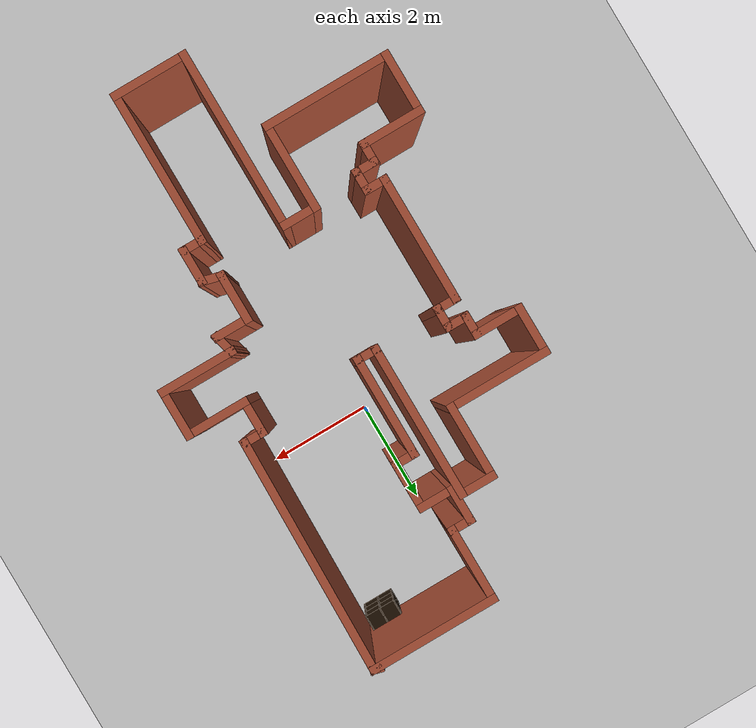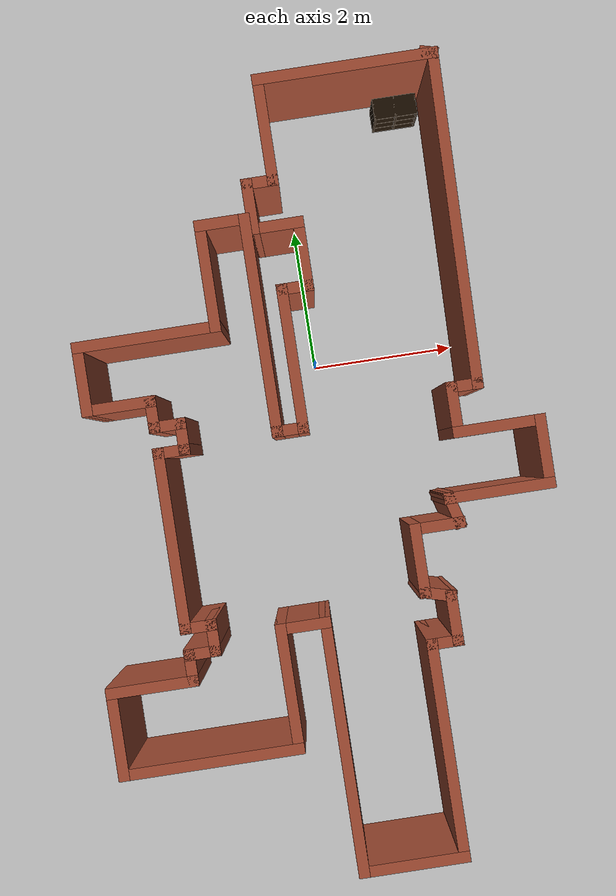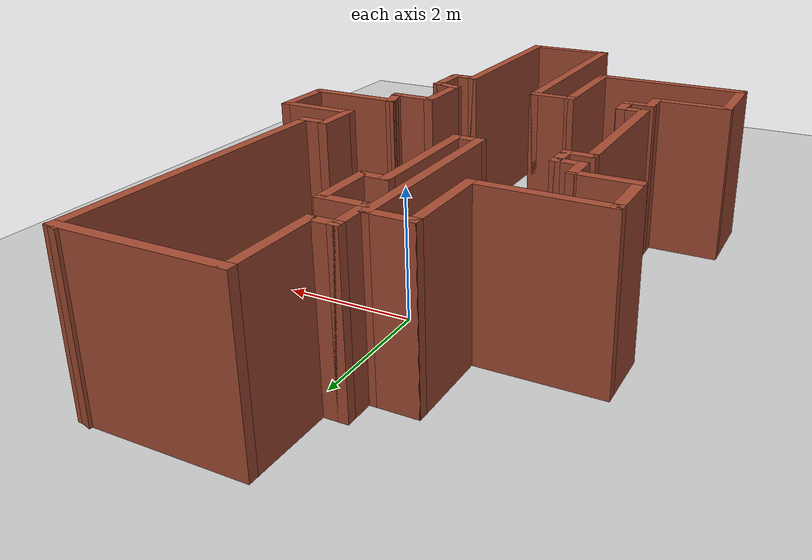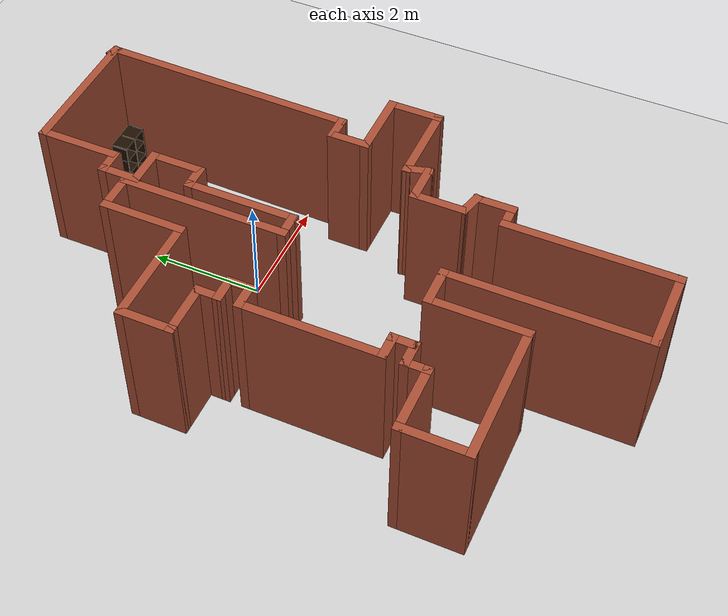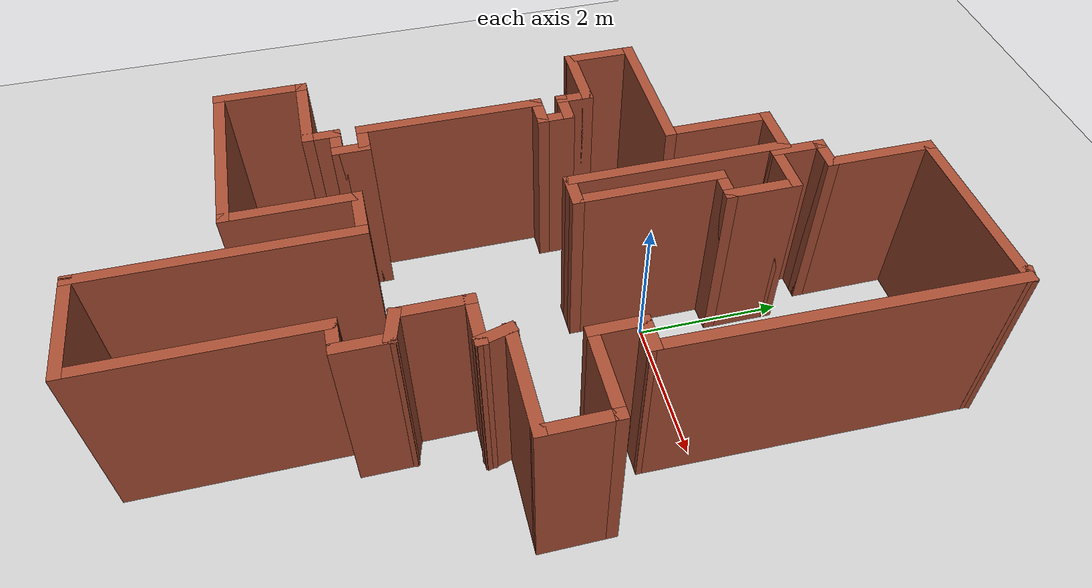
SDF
<sdf version="1.6">
 <world name="default">
  <light name="sun" type="directional">
   <pose>0 0 10 0 -0 0</pose>
   <diffuse>0.8 0.8 0.8 1</diffuse>
   <specular>0.2 0.2 0.2 1</specular>
   <attenuation>
    <range>1000</range>
    <constant>0.9</constant>
    <linear>0.01</linear>
    <quadratic>0.001</quadratic>
   </attenuation>
   <direction>-0.5 0.1 -0.9</direction>
  </light>
  <model name="ground_plane">
   <static>1</static>
   <link name="link">
    <collision name="collision">
     <geometry><plane><normal>0 0 1</normal><size>100 100</size></plane></geometry>
     <surface>
      <contact><collide_bitmask>65535</collide_bitmask></contact>
      <friction><ode><mu>100</mu><mu2>50</mu2></ode></friction>
     </surface>
    </collision>
    <visual name="visual">
     <cast_shadows>0</cast_shadows>
     <geometry><plane><normal>0 0 1</normal><size>100 100</size></plane></geometry>
     <material>
      <script><uri>file://media/materials/scripts/gazebo.material</uri><name>Gazebo/Grey</name></script>
     </material>
    </visual>
   </link>
  </model>
  <gravity>0 0 -9.8</gravity>
  <magnetic_field>6e-06 2.3e-05 -4.2e-05</magnetic_field>
  <atmosphere type="adiabatic"/>
  <physics name="default_physics" default="0" type="ode">
   <max_step_size>0.001</max_step_size>
   <real_time_factor>1</real_time_factor>
   <real_time_update_rate>1000</real_time_update_rate>
  </physics>
  <scene><ambient>0.4 0.4 0.4 1</ambient><background>0.7 0.7 0.7 1</background><shadows>1</shadows></scene>
  <audio><device>default</device></audio>
  <spherical_coordinates>
   <surface_model>EARTH_WGS84</surface_model>
   <latitude_deg>0</latitude_deg>
   <longitude_deg>0</longitude_deg>
   <elevation>0</elevation>
   <heading_deg>0</heading_deg>
  </spherical_coordinates>
  <model name="map_56">
   <pose>-0.262615 -1.51714 0 0 -0 0</pose>
   <link name="Wall_10">
    <collision name="Wall_10_Collision">
     <geometry><box><size>2 0.15 2.5</size></box></geometry>
     <pose>0 0 1.25 0 -0 0</pose>
    </collision>
    <visual name="Wall_10_Visual">
     <pose>0 0 1.25 0 -0 0</pose>
     <geometry><box><size>2 0.15 2.5</size></box></geometry>
     <material>
      <script><uri>file://media/materials/scripts/gazebo.material</uri><name>Gazebo/Bricks</name></script>
      <ambient>1 1 1 1</ambient>
     </material>
     <meta><layer>0</layer></meta>
    </visual>
    <pose>-0.03567 1.55363 0 0 -0 -1.5708</pose>
   </link>
   <link name="Wall_11">
    <collision name="Wall_11_Collision">
     <geometry><box><size>0.5 0.15 2.5</size></box></geometry>
     <pose>0 0 1.25 0 -0 0</pose>
    </collision>
    <visual name="Wall_11_Visual">
     <pose>0 0 1.25 0 -0 0</pose>
     <geometry><box><size>0.5 0.15 2.5</size></box></geometry>
     <material>
      <script><uri>file://media/materials/scripts/gazebo.material</uri><name>Gazebo/Bricks</name></script>
      <ambient>1 1 1 1</ambient>
     </material>
     <meta><layer>0</layer></meta>
    </visual>
    <pose>-0.21067 0.628631 0 0 -0 3.14159</pose>
   </link>
   <link name="Wall_14">
    <collision name="Wall_14_Collision">
     <geometry><box><size>3 0.15 2.5</size></box></geometry>
     <pose>0 0 1.25 0 -0 0</pose>
    </collision>
    <visual name="Wall_14_Visual">
     <pose>0 0 1.25 0 -0 0</pose>
     <geometry><box><size>3 0.15 2.5</size></box></geometry>
     <material>
      <script><uri>file://media/materials/scripts/gazebo.material</uri><name>Gazebo/Bricks</name></script>
      <ambient>1 1 1 1</ambient>
     </material>
     <meta><layer>0</layer></meta>
    </visual>
    <pose>-0.38567 2.05363 0 0 -0 1.5708</pose>
   </link>
   <link name="Wall_15">
    <collision name="Wall_15_Collision">
     <geometry><box><size>0.75 0.15 2.5</size></box></geometry>
     <pose>0 0 1.25 0 -0 0</pose>
    </collision>
    <visual name="Wall_15_Visual">
     <pose>0 0 1.25 0 -0 0</pose>
     <geometry><box><size>0.75 0.15 2.5</size></box></geometry>
     <material>
      <script><uri>file://media/materials/scripts/gazebo.material</uri><name>Gazebo/Bricks</name></script>
      <ambient>1 1 1 1</ambient>
     </material>
     <meta><layer>0</layer></meta>
    </visual>
    <pose>-0.68567 3.47863 0 0 -0 3.14159</pose>
   </link>
   <link name="Wall_16">
    <collision name="Wall_16_Collision">
     <geometry><box><size>1.5 0.15 2.5</size></box></geometry>
     <pose>0 0 1.25 0 -0 0</pose>
    </collision>
    <visual name="Wall_16_Visual">
     <pose>0 0 1.25 0 -0 0</pose>
     <geometry><box><size>1.5 0.15 2.5</size></box></geometry>
     <material>
      <script><uri>file://media/materials/scripts/gazebo.material</uri><name>Gazebo/Bricks</name></script>
      <ambient>1 1 1 1</ambient>
     </material>
     <meta><layer>0</layer></meta>
    </visual>
    <pose>-0.98567 2.80363 0 0 -0 -1.5708</pose>
   </link>
   <link name="Wall_17">
    <collision name="Wall_17_Collision">
     <geometry><box><size>2 0.15 2.5</size></box></geometry>
     <pose>0 0 1.25 0 -0 0</pose>
    </collision>
    <visual name="Wall_17_Visual">
     <pose>0 0 1.25 0 -0 0</pose>
     <geometry><box><size>2 0.15 2.5</size></box></geometry>
     <material>
      <script><uri>file://media/materials/scripts/gazebo.material</uri><name>Gazebo/Bricks</name></script>
      <ambient>1 1 1 1</ambient>
     </material>
     <meta><layer>0</layer></meta>
    </visual>
    <pose>-1.91067 2.12863 0 0 -0 3.14159</pose>
   </link>
   <link name="Wall_18">
    <collision name="Wall_18_Collision">
     <geometry><box><size>1 0.15 2.5</size></box></geometry>
     <pose>0 0 1.25 0 -0 0</pose>
    </collision>
    <visual name="Wall_18_Visual">
     <pose>0 0 1.25 0 -0 0</pose>
     <geometry><box><size>1 0.15 2.5</size></box></geometry>
     <material>
      <script><uri>file://media/materials/scripts/gazebo.material</uri><name>Gazebo/Bricks</name></script>
      <ambient>1 1 1 1</ambient>
     </material>
     <meta><layer>0</layer></meta>
    </visual>
    <pose>-2.83567 1.70363 0 0 -0 -1.5708</pose>
   </link>
   <link name="Wall_22">
    <collision name="Wall_22_Collision">
     <geometry><box><size>1 0.15 2.5</size></box></geometry>
     <pose>0 0 1.25 0 -0 0</pose>
    </collision>
    <visual name="Wall_22_Visual">
     <pose>0 0 1.25 0 -0 0</pose>
     <geometry><box><size>1 0.15 2.5</size></box></geometry>
     <material>
      <script><uri>file://media/materials/scripts/gazebo.material</uri><name>Gazebo/Bricks</name></script>
      <ambient>1 1 1 1</ambient>
     </material>
     <meta><layer>0</layer></meta>
    </visual>
    <pose>-2.41067 1.27863 0 0 -0 0</pose>
   </link>
   <link name="Wall_23">
    <collision name="Wall_23_Collision">
     <geometry><box><size>0.5 0.15 2.5</size></box></geometry>
     <pose>0 0 1.25 0 -0 0</pose>
    </collision>
    <visual name="Wall_23_Visual">
     <pose>0 0 1.25 0 -0 0</pose>
     <geometry><box><size>0.5 0.15 2.5</size></box></geometry>
     <material>
      <script><uri>file://media/materials/scripts/gazebo.material</uri><name>Gazebo/Bricks</name></script>
      <ambient>1 1 1 1</ambient>
     </material>
     <meta><layer>0</layer></meta>
    </visual>
    <pose>-1.98567 1.10363 0 0 -0 -1.5708</pose>
   </link>
   <link name="Wall_24">
    <collision name="Wall_24_Collision">
     <geometry><box><size>0.5 0.15 2.5</size></box></geometry>
     <pose>0 0 1.25 0 -0 0</pose>
    </collision>
    <visual name="Wall_24_Visual">
     <pose>0 0 1.25 0 -0 0</pose>
     <geometry><box><size>0.5 0.15 2.5</size></box></geometry>
     <material>
      <script><uri>file://media/materials/scripts/gazebo.material</uri><name>Gazebo/Bricks</name></script>
      <ambient>1 1 1 1</ambient>
     </material>
     <meta><layer>0</layer></meta>
    </visual>
    <pose>-1.81067 0.928631 0 0 -0 0</pose>
   </link>
   <link name="Wall_25">
    <collision name="Wall_25_Collision">
     <geometry><box><size>0.5 0.15 2.5</size></box></geometry>
     <pose>0 0 1.25 0 -0 0</pose>
    </collision>
    <visual name="Wall_25_Visual">
     <pose>0 0 1.25 0 -0 0</pose>
     <geometry><box><size>0.5 0.15 2.5</size></box></geometry>
     <material>
      <script><uri>file://media/materials/scripts/gazebo.material</uri><name>Gazebo/Bricks</name></script>
      <ambient>1 1 1 1</ambient>
     </material>
     <meta><layer>0</layer></meta>
    </visual>
    <pose>-1.63567 0.753631 0 0 -0 -1.5708</pose>
   </link>
   <link name="Wall_26">
    <collision name="Wall_26_Collision">
     <geometry><box><size>0.5 0.15 2.5</size></box></geometry>
     <pose>0 0 1.25 0 -0 0</pose>
    </collision>
    <visual name="Wall_26_Visual">
     <pose>0 0 1.25 0 -0 0</pose>
     <geometry><box><size>0.5 0.15 2.5</size></box></geometry>
     <material>
      <script><uri>file://media/materials/scripts/gazebo.material</uri><name>Gazebo/Bricks</name></script>
      <ambient>1 1 1 1</ambient>
     </material>
     <meta><layer>0</layer></meta>
    </visual>
    <pose>-1.81067 0.578631 0 0 -0 3.14159</pose>
   </link>
   <link name="Wall_27">
    <collision name="Wall_27_Collision">
     <geometry><box><size>2.5 0.15 2.5</size></box></geometry>
     <pose>0 0 1.25 0 -0 0</pose>
    </collision>
    <visual name="Wall_27_Visual">
     <pose>0 0 1.25 0 -0 0</pose>
     <geometry><box><size>2.5 0.15 2.5</size></box></geometry>
     <material>
      <script><uri>file://media/materials/scripts/gazebo.material</uri><name>Gazebo/Bricks</name></script>
      <ambient>1 1 1 1</ambient>
     </material>
     <meta><layer>0</layer></meta>
    </visual>
    <pose>-1.98567 -0.596369 0 0 -0 -1.5708</pose>
   </link>
   <link name="Wall_28">
    <collision name="Wall_28_Collision">
     <geometry><box><size>0.5 0.15 2.5</size></box></geometry>
     <pose>0 0 1.25 0 -0 0</pose>
    </collision>
    <visual name="Wall_28_Visual">
     <pose>0 0 1.25 0 -0 0</pose>
     <geometry><box><size>0.5 0.15 2.5</size></box></geometry>
     <material>
      <script><uri>file://media/materials/scripts/gazebo.material</uri><name>Gazebo/Bricks</name></script>
      <ambient>1 1 1 1</ambient>
     </material>
     <meta><layer>0</layer></meta>
    </visual>
    <pose>-1.81067 -1.77137 0 0 -0 0</pose>
   </link>
   <link name="Wall_29">
    <collision name="Wall_29_Collision">
     <geometry><box><size>0.5 0.15 2.5</size></box></geometry>
     <pose>0 0 1.25 0 -0 0</pose>
    </collision>
    <visual name="Wall_29_Visual">
     <pose>0 0 1.25 0 -0 0</pose>
     <geometry><box><size>0.5 0.15 2.5</size></box></geometry>
     <material>
      <script><uri>file://media/materials/scripts/gazebo.material</uri><name>Gazebo/Bricks</name></script>
      <ambient>1 1 1 1</ambient>
     </material>
     <meta><layer>0</layer></meta>
    </visual>
    <pose>-1.63567 -1.94637 0 0 -0 -1.5708</pose>
   </link>
   <link name="Wall_3">
    <collision name="Wall_3_Collision">
     <geometry><box><size>2.5 0.15 2.5</size></box></geometry>
     <pose>0 0 1.25 0 -0 0</pose>
    </collision>
    <visual name="Wall_3_Visual">
     <pose>0 0 1.25 0 -0 0</pose>
     <geometry><box><size>2.5 0.15 2.5</size></box></geometry>
     <material>
      <script><uri>file://media/materials/scripts/gazebo.material</uri><name>Gazebo/Bricks</name></script>
      <ambient>1 1 1 1</ambient>
     </material>
     <meta><layer>0</layer></meta>
    </visual>
    <pose>1.23933 5.27863 0 0 -0 3.14159</pose>
   </link>
   <link name="Wall_30">
    <collision name="Wall_30_Collision">
     <geometry><box><size>0.5 0.15 2.5</size></box></geometry>
     <pose>0 0 1.25 0 -0 0</pose>
    </collision>
    <visual name="Wall_30_Visual">
     <pose>0 0 1.25 0 -0 0</pose>
     <geometry><box><size>0.5 0.15 2.5</size></box></geometry>
     <material>
      <script><uri>file://media/materials/scripts/gazebo.material</uri><name>Gazebo/Bricks</name></script>
      <ambient>1 1 1 1</ambient>
     </material>
     <meta><layer>0</layer></meta>
    </visual>
    <pose>-1.81067 -2.12137 0 0 -0 3.14159</pose>
   </link>
   <link name="Wall_31">
    <collision name="Wall_31_Collision">
     <geometry><box><size>0.5 0.15 2.5</size></box></geometry>
     <pose>0 0 1.25 0 -0 0</pose>
    </collision>
    <visual name="Wall_31_Visual">
     <pose>0 0 1.25 0 -0 0</pose>
     <geometry><box><size>0.5 0.15 2.5</size></box></geometry>
     <material>
      <script><uri>file://media/materials/scripts/gazebo.material</uri><name>Gazebo/Bricks</name></script>
      <ambient>1 1 1 1</ambient>
     </material>
     <meta><layer>0</layer></meta>
    </visual>
    <pose>-1.98567 -2.29637 0 0 -0 -1.5708</pose>
   </link>
   <link name="Wall_32">
    <collision name="Wall_32_Collision">
     <geometry><box><size>1.25 0.15 2.5</size></box></geometry>
     <pose>0 0 1.25 0 -0 0</pose>
    </collision>
    <visual name="Wall_32_Visual">
     <pose>0 0 1.25 0 -0 0</pose>
     <geometry><box><size>1.25 0.15 2.5</size></box></geometry>
     <material>
      <script><uri>file://media/materials/scripts/gazebo.material</uri><name>Gazebo/Bricks</name></script>
      <ambient>1 1 1 1</ambient>
     </material>
     <meta><layer>0</layer></meta>
    </visual>
    <pose>-2.53567 -2.47137 0 0 -0 3.14159</pose>
   </link>
   <link name="Wall_33">
    <collision name="Wall_33_Collision">
     <geometry><box><size>1.25 0.15 2.5</size></box></geometry>
     <pose>0 0 1.25 0 -0 0</pose>
    </collision>
    <visual name="Wall_33_Visual">
     <pose>0 0 1.25 0 -0 0</pose>
     <geometry><box><size>1.25 0.15 2.5</size></box></geometry>
     <material>
      <script><uri>file://media/materials/scripts/gazebo.material</uri><name>Gazebo/Bricks</name></script>
      <ambient>1 1 1 1</ambient>
     </material>
     <meta><layer>0</layer></meta>
    </visual>
    <pose>-3.08567 -3.02137 0 0 -0 -1.5708</pose>
   </link>
   <link name="Wall_34">
    <collision name="Wall_34_Collision">
     <geometry><box><size>2.5 0.15 2.5</size></box></geometry>
     <pose>0 0 1.25 0 -0 0</pose>
    </collision>
    <visual name="Wall_34_Visual">
     <pose>0 0 1.25 0 -0 0</pose>
     <geometry><box><size>2.5 0.15 2.5</size></box></geometry>
     <material>
      <script><uri>file://media/materials/scripts/gazebo.material</uri><name>Gazebo/Bricks</name></script>
      <ambient>1 1 1 1</ambient>
     </material>
     <meta><layer>0</layer></meta>
    </visual>
    <pose>-1.91067 -3.57137 0 0 -0 0</pose>
   </link>
   <link name="Wall_35">
    <collision name="Wall_35_Collision">
     <geometry><box><size>1.75 0.15 2.5</size></box></geometry>
     <pose>0 0 1.25 0 -0 0</pose>
    </collision>
    <visual name="Wall_35_Visual">
     <pose>0 0 1.25 0 -0 0</pose>
     <geometry><box><size>1.75 0.15 2.5</size></box></geometry>
     <material>
      <script><uri>file://media/materials/scripts/gazebo.material</uri><name>Gazebo/Bricks</name></script>
      <ambient>1 1 1 1</ambient>
     </material>
     <meta><layer>0</layer></meta>
    </visual>
    <pose>-0.735669 -2.77137 0 0 -0 1.5708</pose>
   </link>
   <link name="Wall_36">
    <collision name="Wall_36_Collision">
     <geometry><box><size>0.75 0.15 2.5</size></box></geometry>
     <pose>0 0 1.25 0 -0 0</pose>
    </collision>
    <visual name="Wall_36_Visual">
     <pose>0 0 1.25 0 -0 0</pose>
     <geometry><box><size>0.75 0.15 2.5</size></box></geometry>
     <material>
      <script><uri>file://media/materials/scripts/gazebo.material</uri><name>Gazebo/Bricks</name></script>
      <ambient>1 1 1 1</ambient>
     </material>
     <meta><layer>0</layer></meta>
    </visual>
    <pose>-0.43567 -1.97137 0 0 -0 0</pose>
   </link>
   <link name="Wall_37">
    <collision name="Wall_37_Collision">
     <geometry><box><size>3.5 0.15 2.5</size></box></geometry>
     <pose>0 0 1.25 0 -0 0</pose>
    </collision>
    <visual name="Wall_37_Visual">
     <pose>0 0 1.25 0 -0 0</pose>
     <geometry><box><size>3.5 0.15 2.5</size></box></geometry>
     <material>
      <script><uri>file://media/materials/scripts/gazebo.material</uri><name>Gazebo/Bricks</name></script>
      <ambient>1 1 1 1</ambient>
     </material>
     <meta><layer>0</layer></meta>
    </visual>
    <pose>-0.13567 -3.64637 0 0 -0 -1.5708</pose>
   </link>
   <link name="Wall_38">
    <collision name="Wall_38_Collision">
     <geometry><box><size>1.5 0.15 2.5</size></box></geometry>
     <pose>0 0 1.25 0 -0 0</pose>
    </collision>
    <visual name="Wall_38_Visual">
     <pose>0 0 1.25 0 -0 0</pose>
     <geometry><box><size>1.5 0.15 2.5</size></box></geometry>
     <material>
      <script><uri>file://media/materials/scripts/gazebo.material</uri><name>Gazebo/Bricks</name></script>
      <ambient>1 1 1 1</ambient>
     </material>
     <meta><layer>0</layer></meta>
    </visual>
    <pose>0.53933 -5.32137 0 0 -0 0</pose>
   </link>
   <link name="Wall_39">
    <collision name="Wall_39_Collision">
     <geometry><box><size>3 0.15 2.5</size></box></geometry>
     <pose>0 0 1.25 0 -0 0</pose>
    </collision>
    <visual name="Wall_39_Visual">
     <pose>0 0 1.25 0 -0 0</pose>
     <geometry><box><size>3 0.15 2.5</size></box></geometry>
     <material>
      <script><uri>file://media/materials/scripts/gazebo.material</uri><name>Gazebo/Bricks</name></script>
      <ambient>1 1 1 1</ambient>
     </material>
     <meta><layer>0</layer></meta>
    </visual>
    <pose>1.21433 -3.89637 0 0 -0 1.5708</pose>
   </link>
   <link name="Wall_4">
    <collision name="Wall_4_Collision">
     <geometry><box><size>1.5 0.15 2.5</size></box></geometry>
     <pose>0 0 1.25 0 -0 0</pose>
    </collision>
    <visual name="Wall_4_Visual">
     <pose>0 0 1.25 0 -0 0</pose>
     <geometry><box><size>1.5 0.15 2.5</size></box></geometry>
     <material>
      <script><uri>file://media/materials/scripts/gazebo.material</uri><name>Gazebo/Bricks</name></script>
      <ambient>1 1 1 1</ambient>
     </material>
     <meta><layer>0</layer></meta>
    </visual>
    <pose>0.06433 4.60363 0 0 -0 -1.5708</pose>
   </link>
   <link name="Wall_40">
    <collision name="Wall_40_Collision">
     <geometry><box><size>0.5 0.15 2.5</size></box></geometry>
     <pose>0 0 1.25 0 -0 0</pose>
    </collision>
    <visual name="Wall_40_Visual">
     <pose>0 0 1.25 0 -0 0</pose>
     <geometry><box><size>0.5 0.15 2.5</size></box></geometry>
     <material>
      <script><uri>file://media/materials/scripts/gazebo.material</uri><name>Gazebo/Bricks</name></script>
      <ambient>1 1 1 1</ambient>
     </material>
     <meta><layer>0</layer></meta>
    </visual>
    <pose>1.38933 -2.47137 0 0 -0 0</pose>
   </link>
   <link name="Wall_41">
    <collision name="Wall_41_Collision">
     <geometry><box><size>0.75 0.15 2.5</size></box></geometry>
     <pose>0 0 1.25 0 -0 0</pose>
    </collision>
    <visual name="Wall_41_Visual">
     <pose>0 0 1.25 0 -0 0</pose>
     <geometry><box><size>0.75 0.15 2.5</size></box></geometry>
     <material>
      <script><uri>file://media/materials/scripts/gazebo.material</uri><name>Gazebo/Bricks</name></script>
      <ambient>1 1 1 1</ambient>
     </material>
     <meta><layer>0</layer></meta>
    </visual>
    <pose>1.56433 -2.17137 0 0 -0 1.5708</pose>
   </link>
   <link name="Wall_42">
    <collision name="Wall_42_Collision">
     <geometry><box><size>0.5 0.15 2.5</size></box></geometry>
     <pose>0 0 1.25 0 -0 0</pose>
    </collision>
    <visual name="Wall_42_Visual">
     <pose>0 0 1.25 0 -0 0</pose>
     <geometry><box><size>0.5 0.15 2.5</size></box></geometry>
     <material>
      <script><uri>file://media/materials/scripts/gazebo.material</uri><name>Gazebo/Bricks</name></script>
      <ambient>1 1 1 1</ambient>
     </material>
     <meta><layer>0</layer></meta>
    </visual>
    <pose>1.39529 -1.82607 0 0 -0 2.87979</pose>
   </link>
   <link name="Wall_43">
    <collision name="Wall_43_Collision">
     <geometry><box><size>1 0.15 2.5</size></box></geometry>
     <pose>0 0 1.25 0 -0 0</pose>
    </collision>
    <visual name="Wall_43_Visual">
     <pose>0 0 1.25 0 -0 0</pose>
     <geometry><box><size>1 0.15 2.5</size></box></geometry>
     <material>
      <script><uri>file://media/materials/scripts/gazebo.material</uri><name>Gazebo/Bricks</name></script>
      <ambient>1 1 1 1</ambient>
     </material>
     <meta><layer>0</layer></meta>
    </visual>
    <pose>1.22626 -1.35578 0 0 -0 1.5708</pose>
   </link>
   <link name="Wall_44">
    <collision name="Wall_44_Collision">
     <geometry><box><size>0.75 0.15 2.5</size></box></geometry>
     <pose>0 0 1.25 0 -0 0</pose>
    </collision>
    <visual name="Wall_44_Visual">
     <pose>0 0 1.25 0 -0 0</pose>
     <geometry><box><size>0.75 0.15 2.5</size></box></geometry>
     <material>
      <script><uri>file://media/materials/scripts/gazebo.material</uri><name>Gazebo/Bricks</name></script>
      <ambient>1 1 1 1</ambient>
     </material>
     <meta><layer>0</layer></meta>
    </visual>
    <pose>1.52626 -0.930782 0 0 -0 0</pose>
   </link>
   <link name="Wall_45">
    <collision name="Wall_45_Collision">
     <geometry><box><size>0.5 0.15 2.5</size></box></geometry>
     <pose>0 0 1.25 0 -0 0</pose>
    </collision>
    <visual name="Wall_45_Visual">
     <pose>0 0 1.25 0 -0 0</pose>
     <geometry><box><size>0.5 0.15 2.5</size></box></geometry>
     <material>
      <script><uri>file://media/materials/scripts/gazebo.material</uri><name>Gazebo/Bricks</name></script>
      <ambient>1 1 1 1</ambient>
     </material>
     <meta><layer>0</layer></meta>
    </visual>
    <pose>1.78096 -0.761745 0 0 -0 1.8326</pose>
   </link>
   <link name="Wall_46">
    <collision name="Wall_46_Collision">
     <geometry><box><size>1.5 0.15 2.5</size></box></geometry>
     <pose>0 0 1.25 0 -0 0</pose>
    </collision>
    <visual name="Wall_46_Visual">
     <pose>0 0 1.25 0 -0 0</pose>
     <geometry><box><size>1.5 0.15 2.5</size></box></geometry>
     <material>
      <script><uri>file://media/materials/scripts/gazebo.material</uri><name>Gazebo/Bricks</name></script>
      <ambient>1 1 1 1</ambient>
     </material>
     <meta><layer>0</layer></meta>
    </visual>
    <pose>2.41067 -0.592708 0 0 -0 0</pose>
   </link>
   <link name="Wall_47">
    <collision name="Wall_47_Collision">
     <geometry><box><size>1 0.15 2.5</size></box></geometry>
     <pose>0 0 1.25 0 -0 0</pose>
    </collision>
    <visual name="Wall_47_Visual">
     <pose>0 0 1.25 0 -0 0</pose>
     <geometry><box><size>1 0.15 2.5</size></box></geometry>
     <material>
      <script><uri>file://media/materials/scripts/gazebo.material</uri><name>Gazebo/Bricks</name></script>
      <ambient>1 1 1 1</ambient>
     </material>
     <meta><layer>0</layer></meta>
    </visual>
    <pose>3.08567 -0.167708 0 0 -0 1.5708</pose>
   </link>
   <link name="Wall_48">
    <collision name="Wall_48_Collision">
     <geometry><box><size>1.25 0.15 2.5</size></box></geometry>
     <pose>0 0 1.25 0 -0 0</pose>
    </collision>
    <visual name="Wall_48_Visual">
     <pose>0 0 1.25 0 -0 0</pose>
     <geometry><box><size>1.25 0.15 2.5</size></box></geometry>
     <material>
      <script><uri>file://media/materials/scripts/gazebo.material</uri><name>Gazebo/Bricks</name></script>
      <ambient>1 1 1 1</ambient>
     </material>
     <meta><layer>0</layer></meta>
    </visual>
    <pose>2.53567 0.257292 0 0 -0 3.14159</pose>
   </link>
   <link name="Wall_49">
    <collision name="Wall_49_Collision">
     <geometry><box><size>0.75 0.15 2.5</size></box></geometry>
     <pose>0 0 1.25 0 -0 0</pose>
    </collision>
    <visual name="Wall_49_Visual">
     <pose>0 0 1.25 0 -0 0</pose>
     <geometry><box><size>0.75 0.15 2.5</size></box></geometry>
     <material>
      <script><uri>file://media/materials/scripts/gazebo.material</uri><name>Gazebo/Bricks</name></script>
      <ambient>1 1 1 1</ambient>
     </material>
     <meta><layer>0</layer></meta>
    </visual>
    <pose>1.98567 0.557292 0 0 -0 1.5708</pose>
   </link>
   <link name="Wall_5">
    <collision name="Wall_5_Collision">
     <geometry><box><size>0.5 0.15 2.5</size></box></geometry>
     <pose>0 0 1.25 0 -0 0</pose>
    </collision>
    <visual name="Wall_5_Visual">
     <pose>0 0 1.25 0 -0 0</pose>
     <geometry><box><size>0.5 0.15 2.5</size></box></geometry>
     <material>
      <script><uri>file://media/materials/scripts/gazebo.material</uri><name>Gazebo/Bricks</name></script>
      <ambient>1 1 1 1</ambient>
     </material>
     <meta><layer>0</layer></meta>
    </visual>
    <pose>-0.110669 3.92863 0 0 -0 3.14159</pose>
   </link>
   <link name="Wall_50">
    <collision name="Wall_50_Collision">
     <geometry><box><size>0.5 0.15 2.5</size></box></geometry>
     <pose>0 0 1.25 0 -0 0</pose>
    </collision>
    <visual name="Wall_50_Visual">
     <pose>0 0 1.25 0 -0 0</pose>
     <geometry><box><size>0.5 0.15 2.5</size></box></geometry>
     <material>
      <script><uri>file://media/materials/scripts/gazebo.material</uri><name>Gazebo/Bricks</name></script>
      <ambient>1 1 1 1</ambient>
     </material>
     <meta><layer>0</layer></meta>
    </visual>
    <pose>2.16067 0.857292 0 0 -0 0</pose>
   </link>
   <link name="Wall_51">
    <collision name="Wall_51_Collision">
     <geometry><box><size>4.57204 0.15 2.5</size></box></geometry>
     <pose>0 0 1.25 0 -0 0</pose>
    </collision>
    <visual name="Wall_51_Visual">
     <pose>0 0 1.25 0 -0 0</pose>
     <geometry><box><size>4.57204 0.15 2.5</size></box></geometry>
     <material>
      <script><uri>file://media/materials/scripts/gazebo.material</uri><name>Gazebo/Bricks</name></script>
      <ambient>1 1 1 1</ambient>
     </material>
     <meta><layer>0</layer></meta>
    </visual>
    <pose>2.375 3.06796 0 0 -0 1.55301</pose>
   </link>
   <link name="Wall_52">
    <collision name="Wall_52_Collision">
     <geometry><box><size>0.25 0.15 2.5</size></box></geometry>
     <pose>0 0 1.25 0 -0 0</pose>
    </collision>
    <visual name="Wall_52_Visual">
     <pose>0 0 1.25 0 -0 0</pose>
     <geometry><box><size>0.25 0.15 2.5</size></box></geometry>
     <material>
      <script><uri>file://media/materials/scripts/gazebo.material</uri><name>Gazebo/Bricks</name></script>
      <ambient>1 1 1 1</ambient>
     </material>
     <meta><layer>0</layer></meta>
    </visual>
    <pose>2.36603 5.29157 0 0 -0 2.87979</pose>
   </link>
   <link name="Wall_6">
    <collision name="Wall_6_Collision">
     <geometry><box><size>0.75 0.15 2.5</size></box></geometry>
     <pose>0 0 1.25 0 -0 0</pose>
    </collision>
    <visual name="Wall_6_Visual">
     <pose>0 0 1.25 0 -0 0</pose>
     <geometry><box><size>0.75 0.15 2.5</size></box></geometry>
     <material>
      <script><uri>file://media/materials/scripts/gazebo.material</uri><name>Gazebo/Bricks</name></script>
      <ambient>1 1 1 1</ambient>
     </material>
     <meta><layer>0</layer></meta>
    </visual>
    <pose>-0.28567 3.62863 0 0 -0 -1.5708</pose>
   </link>
   <link name="Wall_7">
    <collision name="Wall_7_Collision">
     <geometry><box><size>0.75 0.15 2.5</size></box></geometry>
     <pose>0 0 1.25 0 -0 0</pose>
    </collision>
    <visual name="Wall_7_Visual">
     <pose>0 0 1.25 0 -0 0</pose>
     <geometry><box><size>0.75 0.15 2.5</size></box></geometry>
     <material>
      <script><uri>file://media/materials/scripts/gazebo.material</uri><name>Gazebo/Bricks</name></script>
      <ambient>1 1 1 1</ambient>
     </material>
     <meta><layer>0</layer></meta>
    </visual>
    <pose>0.014331 3.32863 0 0 -0 0</pose>
   </link>
   <link name="Wall_8">
    <collision name="Wall_8_Collision">
     <geometry><box><size>1 0.15 2.5</size></box></geometry>
     <pose>0 0 1.25 0 -0 0</pose>
    </collision>
    <visual name="Wall_8_Visual">
     <pose>0 0 1.25 0 -0 0</pose>
     <geometry><box><size>1 0.15 2.5</size></box></geometry>
     <material>
      <script><uri>file://media/materials/scripts/gazebo.material</uri><name>Gazebo/Bricks</name></script>
      <ambient>1 1 1 1</ambient>
     </material>
     <meta><layer>0</layer></meta>
    </visual>
    <pose>0.31433 2.90363 0 0 -0 -1.5708</pose>
   </link>
   <link name="Wall_9">
    <collision name="Wall_9_Collision">
     <geometry><box><size>0.5 0.15 2.5</size></box></geometry>
     <pose>0 0 1.25 0 -0 0</pose>
    </collision>
    <visual name="Wall_9_Visual">
     <pose>0 0 1.25 0 -0 0</pose>
     <geometry><box><size>0.5 0.15 2.5</size></box></geometry>
     <material>
      <script><uri>file://media/materials/scripts/gazebo.material</uri><name>Gazebo/Bricks</name></script>
      <ambient>1 1 1 1</ambient>
     </material>
     <meta><layer>0</layer></meta>
    </visual>
    <pose>0.13933 2.47863 0 0 -0 3.14159</pose>
   </link>
   <static>1</static>
  </model>
  <model name="6_Cube_StorageE">
   <link name="Wall_0">
    <pose>0 0 0.01 0 -0 0</pose>
    <inertial>
     <mass>1.6201</mass>
     <inertia><ixx>0.0119</ixx><iyy>0.0631</iyy><izz>0.0513</izz><ixy>0</ixy><ixz>0</ixz><iyz>0</iyz></inertia>
    </inertial>
    <collision name="Wall_0_Collision"><geometry><box><size>0.616 0.296 0.02</size></box></geometry></collision>
    <visual name="Wall_0_Visual">
     <geometry><box><size>0.616 0.296 0.02</size></box></geometry>
     <material>
      <script><uri>file://media/materials/scripts/gazebo.material</uri><name>Gazebo/Grey</name></script>
      <ambient>0.105882 0.0509804 0 1</ambient>
     </material>
    </visual>
   </link>
   <joint name="0_2" type="fixed">
    <pose>-0.308 0 0 0 -0 0</pose>
    <parent>Wall_2</parent>
    <child>Wall_0</child>
    <axis>
     <xyz>1 0 0</xyz>
     <use_parent_model_frame>0</use_parent_model_frame>
     <limit><lower>-1e+16</lower><upper>1e+16</upper></limit>
    </axis>
   </joint>
   <joint name="0_12" type="fixed">
    <parent>Wall_12</parent>
    <child>Wall_0</child>
    <axis>
     <xyz>0 0 1</xyz>
     <use_parent_model_frame>0</use_parent_model_frame>
     <limit><lower>-1e+16</lower><upper>1e+16</upper></limit>
    </axis>
   </joint>
   <joint name="0_4" type="fixed">
    <pose>0.308 0 0 0 -0 0</pose>
    <parent>Wall_4</parent>
    <child>Wall_0</child>
    <axis>
     <xyz>1 0 0</xyz>
     <use_parent_model_frame>0</use_parent_model_frame>
     <limit><lower>-1e+16</lower><upper>1e+16</upper></limit>
    </axis>
   </joint>
   <link name="Wall_10">
    <pose>0 0 0.61 0 -0 0</pose>
    <inertial>
     <mass>1.6201</mass>
     <inertia><ixx>0.0119</ixx><iyy>0.0631</iyy><izz>0.0513</izz><ixy>0</ixy><ixz>0</ixz><iyz>0</iyz></inertia>
    </inertial>
    <collision name="Wall_10_Collision"><geometry><box><size>0.616 0.296 0.02</size></box></geometry></collision>
    <visual name="Wall_10_Visual">
     <geometry><box><size>0.616 0.296 0.02</size></box></geometry>
     <material>
      <script><uri>file://media/materials/scripts/gazebo.material</uri><name>Gazebo/Grey</name></script>
      <ambient>0.105882 0.0509804 0 1</ambient>
     </material>
    </visual>
   </link>
   <joint name="10_2" type="fixed">
    <pose>-0.308 0 0 0 -0 0</pose>
    <parent>Wall_2</parent>
    <child>Wall_10</child>
    <axis>
     <xyz>1 0 0</xyz>
     <use_parent_model_frame>0</use_parent_model_frame>
     <limit><lower>-1e+16</lower><upper>1e+16</upper></limit>
    </axis>
   </joint>
   <joint name="10_12" type="fixed">
    <parent>Wall_12</parent>
    <child>Wall_10</child>
    <axis>
     <xyz>0 0 1</xyz>
     <use_parent_model_frame>0</use_parent_model_frame>
     <limit><lower>-1e+16</lower><upper>1e+16</upper></limit>
    </axis>
   </joint>
   <joint name="10_4" type="fixed">
    <pose>0.308 0 0 0 -0 0</pose>
    <parent>Wall_4</parent>
    <child>Wall_10</child>
    <axis>
     <xyz>1 0 0</xyz>
     <use_parent_model_frame>0</use_parent_model_frame>
     <limit><lower>-1e+16</lower><upper>1e+16</upper></limit>
    </axis>
   </joint>
   <link name="Wall_12">
    <pose>0 0 0.4575 0 -0 0</pose>
    <inertial>
     <mass>2.4065</mass>
     <inertia><ixx>0.0177</ixx><iyy>0.1855</iyy><izz>0.168</izz><ixy>0</ixy><ixz>0</ixz><iyz>0</iyz></inertia>
    </inertial>
    <collision name="Wall_12_Collision"><geometry><box><size>0.02 0.296 0.915</size></box></geometry></collision>
    <visual name="Wall_12_Visual">
     <geometry><box><size>0.02 0.296 0.915</size></box></geometry>
     <material>
      <script><uri>file://media/materials/scripts/gazebo.material</uri><name>Gazebo/Grey</name></script>
      <ambient>0.105882 0.0509804 0 1</ambient>
     </material>
    </visual>
   </link>
   <link name="Wall_2">
    <pose>-0.298 0 0.4575 0 -0 0</pose>
    <inertial>
     <mass>2.4065</mass>
     <inertia><ixx>0.0177</ixx><iyy>0.1855</iyy><izz>0.168</izz><ixy>0</ixy><ixz>0</ixz><iyz>0</iyz></inertia>
    </inertial>
    <collision name="Wall_2_Collision"><geometry><box><size>0.02 0.296 0.915</size></box></geometry></collision>
    <visual name="Wall_2_Visual">
     <geometry><box><size>0.02 0.296 0.915</size></box></geometry>
     <material>
      <script><uri>file://media/materials/scripts/gazebo.material</uri><name>Gazebo/Grey</name></script>
      <ambient>0.105882 0.0509804 0 1</ambient>
     </material>
    </visual>
   </link>
   <link name="Wall_4">
    <pose>0.298 0 0.4575 0 -0 0</pose>
    <inertial>
     <mass>2.4065</mass>
     <inertia><ixx>0.0177</ixx><iyy>0.1855</iyy><izz>0.168</izz><ixy>0</ixy><ixz>0</ixz><iyz>0</iyz></inertia>
    </inertial>
    <collision name="Wall_4_Collision"><geometry><box><size>0.02 0.296 0.915</size></box></geometry></collision>
    <visual name="Wall_4_Visual">
     <geometry><box><size>0.02 0.296 0.915</size></box></geometry>
     <material>
      <script><uri>file://media/materials/scripts/gazebo.material</uri><name>Gazebo/Grey</name></script>
      <ambient>0.105882 0.0509804 0 1</ambient>
     </material>
    </visual>
   </link>
   <link name="Wall_6">
    <pose>0 0 0.905 0 -0 0</pose>
    <inertial>
     <mass>1.6201</mass>
     <inertia><ixx>0.0119</ixx><iyy>0.0631</iyy><izz>0.0513</izz><ixy>0</ixy><ixz>0</ixz><iyz>0</iyz></inertia>
    </inertial>
    <collision name="Wall_6_Collision"><geometry><box><size>0.616 0.296 0.02</size></box></geometry></collision>
    <visual name="Wall_6_Visual">
     <geometry><box><size>0.616 0.296 0.02</size></box></geometry>
     <material>
      <script><uri>file://media/materials/scripts/gazebo.material</uri><name>Gazebo/Grey</name></script>
      <ambient>0.105882 0.0509804 0 1</ambient>
     </material>
    </visual>
   </link>
   <joint name="6_2" type="fixed">
    <pose>-0.308 0 0 0 -0 0</pose>
    <parent>Wall_2</parent>
    <child>Wall_6</child>
    <axis>
     <xyz>2 0 0</xyz>
     <use_parent_model_frame>0</use_parent_model_frame>
     <limit><lower>-1e+16</lower><upper>1e+16</upper></limit>
    </axis>
   </joint>
   <joint name="6_12" type="fixed">
    <parent>Wall_12</parent>
    <child>Wall_6</child>
    <axis>
     <xyz>0 0 1</xyz>
     <use_parent_model_frame>0</use_parent_model_frame>
     <limit><lower>-1e+16</lower><upper>1e+16</upper></limit>
    </axis>
   </joint>
   <joint name="6_4" type="fixed">
    <pose>0.308 0 0 0 -0 0</pose>
    <parent>Wall_4</parent>
    <child>Wall_6</child>
    <axis>
     <xyz>1 0 0</xyz>
     <use_parent_model_frame>0</use_parent_model_frame>
     <limit><lower>-1e+16</lower><upper>1e+16</upper></limit>
    </axis>
   </joint>
   <link name="Wall_8">
    <pose>0 0 0.305 0 -0 0</pose>
    <inertial>
     <mass>1.6201</mass>
     <inertia><ixx>0.0119</ixx><iyy>0.0631</iyy><izz>0.0513</izz><ixy>0</ixy><ixz>0</ixz><iyz>0</iyz></inertia>
    </inertial>
    <collision name="Wall_8_Collision"><geometry><box><size>0.616 0.296 0.02</size></box></geometry></collision>
    <visual name="Wall_8_Visual">
     <geometry><box><size>0.616 0.296 0.02</size></box></geometry>
     <material>
      <script><uri>file://media/materials/scripts/gazebo.material</uri><name>Gazebo/Grey</name></script>
      <ambient>0.105882 0.0509804 0 1</ambient>
     </material>
    </visual>
   </link>
   <joint name="8_2" type="fixed">
    <pose>-0.308 0 0 0 -0 0</pose>
    <parent>Wall_2</parent>
    <child>Wall_8</child>
    <axis>
     <xyz>1 0 0</xyz>
     <use_parent_model_frame>0</use_parent_model_frame>
     <limit><lower>-1e+16</lower><upper>1e+16</upper></limit>
    </axis>
   </joint>
   <joint name="8_12" type="fixed">
    <parent>Wall_12</parent>
    <child>Wall_8</child>
    <axis>
     <xyz>0 0 1</xyz>
     <use_parent_model_frame>0</use_parent_model_frame>
     <limit><lower>-1e+16</lower><upper>1e+16</upper></limit>
    </axis>
   </joint>
   <joint name="8_4" type="fixed">
    <pose>0.308 0 0 0 -0 0</pose>
    <parent>Wall_4</parent>
    <child>Wall_8</child>
    <axis>
     <xyz>1 0 0</xyz>
     <use_parent_model_frame>0</use_parent_model_frame>
     <limit><lower>-1e+16</lower><upper>1e+16</upper></limit>
    </axis>
   </joint>
   <static>1</static>
   <pose>1.67413 3.45688 0 0 -0 0</pose>
  </model>
 </world>
</sdf>
